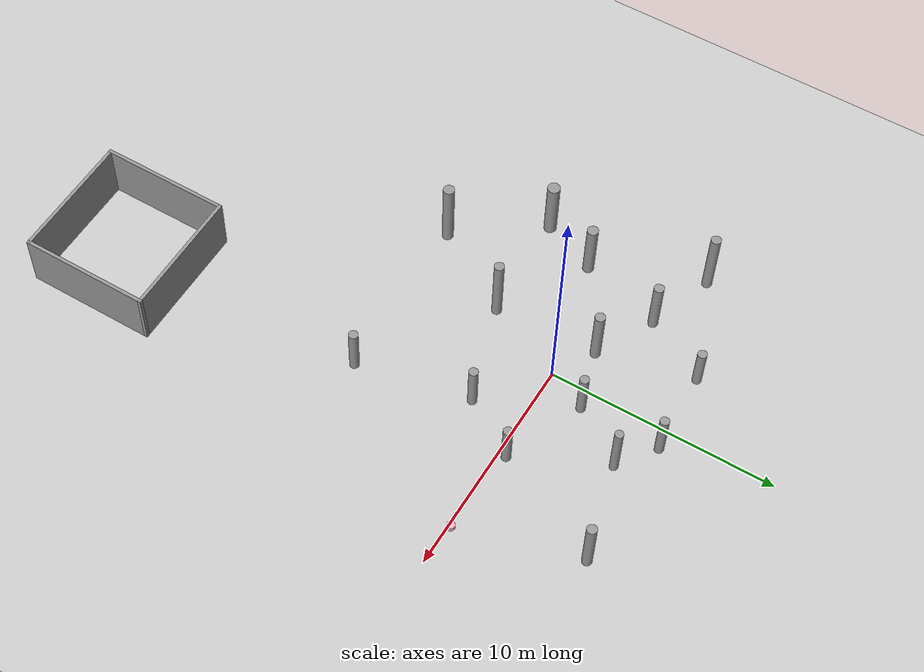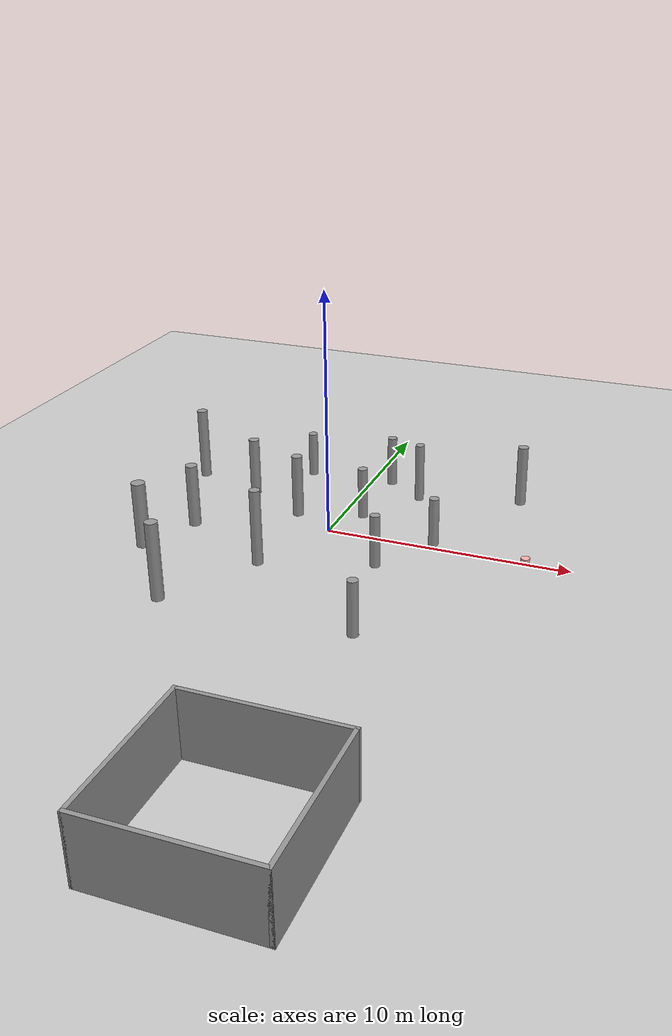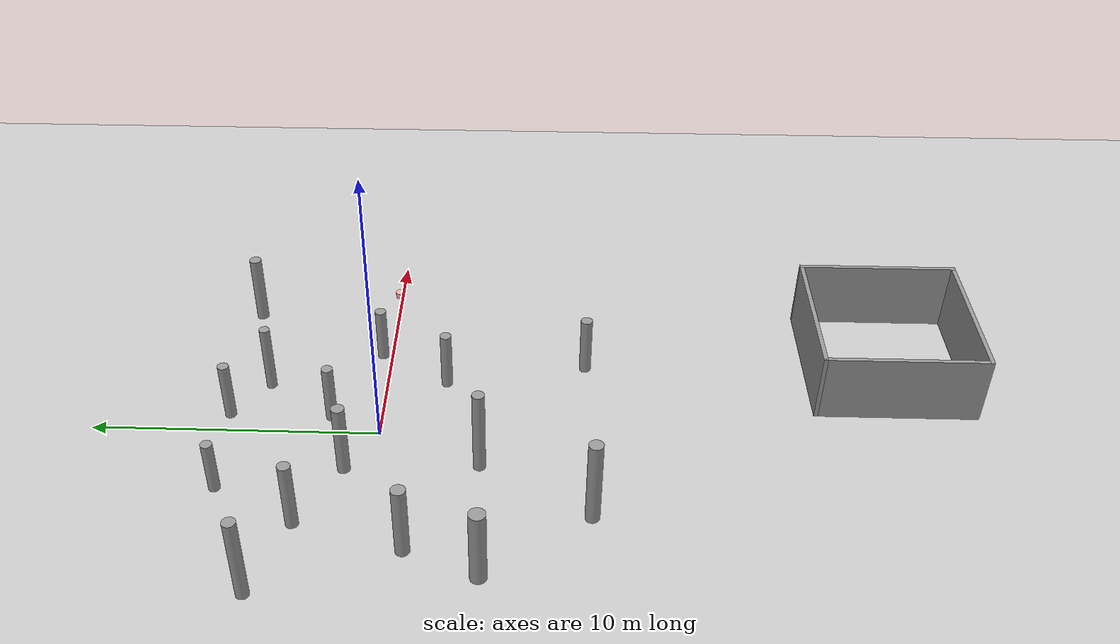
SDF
<sdf version="1.6">
 <world name="default">
  <light name="sun" type="directional">
   <pose>0 0 10 0 -0 0</pose>
   <diffuse>0.8 0.8 0.8 1</diffuse>
   <specular>0.2 0.2 0.2 1</specular>
   <attenuation>
    <range>1000</range>
    <constant>0.9</constant>
    <linear>0.01</linear>
    <quadratic>0.001</quadratic>
   </attenuation>
   <direction>-0.5 0.1 -0.9</direction>
  </light>
  <model name="ground_plane">
   <static>1</static>
   <link name="link">
    <collision name="collision">
     <geometry><plane><normal>0 0 1</normal><size>100 100</size></plane></geometry>
     <surface><friction><ode><mu>100</mu><mu2>50</mu2></ode></friction></surface>
    </collision>
    <visual name="visual">
     <cast_shadows>0</cast_shadows>
     <geometry><plane><normal>0 0 1</normal><size>100 100</size></plane></geometry>
     <material>
      <script><uri>file://media/materials/scripts/gazebo.material</uri><name>Gazebo/Grey</name></script>
     </material>
    </visual>
    <velocity_decay><linear>0</linear><angular>0</angular></velocity_decay>
   </link>
  </model>
  <physics name="default_physics" default="0" type="ode">
   <max_step_size>0.001</max_step_size>
   <real_time_factor>1</real_time_factor>
   <real_time_update_rate>1000</real_time_update_rate>
  </physics>
  <scene><ambient>0.4 0.4 0.4 1</ambient><background>0.7 0.7 0.7 1</background><shadows>1</shadows></scene>
  <spherical_coordinates>
   <surface_model>EARTH_WGS84</surface_model>
   <latitude_deg>0</latitude_deg>
   <longitude_deg>0</longitude_deg>
   <elevation>0</elevation>
   <heading_deg>0</heading_deg>
  </spherical_coordinates>
  <model name="vRoom">
   <pose>4.29627 -17.9422 0 0 -0 0</pose>
   <link name="Wall_0">
    <collision name="Wall_0_Collision">
     <geometry><box><size>5.75 0.15 2.5</size></box></geometry>
     <pose>0 0 1.25 0 -0 0</pose>
    </collision>
    <visual name="Wall_0_Visual">
     <pose>0 0 1.25 0 -0 0</pose>
     <geometry><box><size>5.75 0.15 2.5</size></box></geometry>
     <material>
      <script><uri>file://media/materials/scripts/gazebo.material</uri><name>Gazebo/Grey</name></script>
      <ambient>1 1 1 1</ambient>
     </material>
    </visual>
    <pose>-2.8 -0 0 0 0 -1.5708</pose>
    <velocity_decay><linear>0</linear><angular>0</angular></velocity_decay>
   </link>
   <link name="Wall_1">
    <collision name="Wall_1_Collision">
     <geometry><box><size>5.75 0.15 2.5</size></box></geometry>
     <pose>0 0 1.25 0 -0 0</pose>
    </collision>
    <visual name="Wall_1_Visual">
     <pose>0 0 1.25 0 -0 0</pose>
     <geometry><box><size>5.75 0.15 2.5</size></box></geometry>
     <material>
      <script><uri>file://media/materials/scripts/gazebo.material</uri><name>Gazebo/Grey</name></script>
      <ambient>1 1 1 1</ambient>
     </material>
    </visual>
    <pose>0 -2.8 0 0 -0 0</pose>
    <velocity_decay><linear>0</linear><angular>0</angular></velocity_decay>
   </link>
   <link name="Wall_2">
    <collision name="Wall_2_Collision">
     <geometry><box><size>5.75 0.15 2.5</size></box></geometry>
     <pose>0 0 1.25 0 -0 0</pose>
    </collision>
    <visual name="Wall_2_Visual">
     <pose>0 0 1.25 0 -0 0</pose>
     <geometry><box><size>5.75 0.15 2.5</size></box></geometry>
     <material>
      <script><uri>file://media/materials/scripts/gazebo.material</uri><name>Gazebo/Grey</name></script>
      <ambient>1 1 1 1</ambient>
     </material>
    </visual>
    <pose>2.8 -0 0 0 -0 1.5708</pose>
    <velocity_decay><linear>0</linear><angular>0</angular></velocity_decay>
   </link>
   <link name="Wall_3">
    <collision name="Wall_3_Collision">
     <geometry><box><size>5.75 0.15 2.5</size></box></geometry>
     <pose>0 0 1.25 0 -0 0</pose>
    </collision>
    <visual name="Wall_3_Visual">
     <pose>0 0 1.25 0 -0 0</pose>
     <geometry><box><size>5.75 0.15 2.5</size></box></geometry>
     <material>
      <script><uri>file://media/materials/scripts/gazebo.material</uri><name>Gazebo/Grey</name></script>
      <ambient>1 1 1 1</ambient>
     </material>
    </visual>
    <pose>0 2.8 0 0 -0 3.14159</pose>
    <velocity_decay><linear>0</linear><angular>0</angular></velocity_decay>
   </link>
   <static>1</static>
  </model>
  <model name="unit_cylinder_1">
   <pose>0.822237 1.78651 1.08362 0 -0 3e-06</pose>
   <link name="link">
    <inertial>
     <mass>1</mass>
     <inertia><ixx>1</ixx><ixy>0</ixy><ixz>0</ixz><iyy>1</iyy><iyz>0</iyz><izz>1</izz></inertia>
    </inertial>
    <collision name="collision">
     <geometry><cylinder><radius>0.2</radius><length>2.16725</length></cylinder></geometry>
    </collision>
    <visual name="visual">
     <geometry><cylinder><radius>0.2</radius><length>2.16725</length></cylinder></geometry>
     <material>
      <script><uri>file://media/materials/scripts/gazebo.material</uri><name>Gazebo/Grey</name></script>
     </material>
    </visual>
    <velocity_decay><linear>0</linear><angular>0</angular></velocity_decay>
   </link>
   <static>0</static>
  </model>
  <model name="unit_cylinder_2">
   <pose>2.79752 -2.11358 1.08527 0 -0 2.1e-05</pose>
   <link name="link">
    <inertial>
     <mass>1</mass>
     <inertia><ixx>1</ixx><ixy>0</ixy><ixz>0</ixz><iyy>1</iyy><iyz>0</iyz><izz>1</izz></inertia>
    </inertial>
    <collision name="collision">
     <geometry><cylinder><radius>0.2</radius><length>2.17055</length></cylinder></geometry>
    </collision>
    <visual name="visual">
     <geometry><cylinder><radius>0.2</radius><length>2.17055</length></cylinder></geometry>
     <material>
      <script><uri>file://media/materials/scripts/gazebo.material</uri><name>Gazebo/Grey</name></script>
     </material>
    </visual>
    <velocity_decay><linear>0</linear><angular>0</angular></velocity_decay>
   </link>
   <static>0</static>
  </model>
  <model name="unit_cylinder_3">
   <pose>4.36125 0.36754 1.01442 0 -0 2e-06</pose>
   <link name="link">
    <inertial>
     <mass>1</mass>
     <inertia><ixx>1</ixx><ixy>0</ixy><ixz>0</ixz><iyy>1</iyy><iyz>0</iyz><izz>1</izz></inertia>
    </inertial>
    <collision name="collision">
     <geometry><cylinder><radius>0.2</radius><length>2.02885</length></cylinder></geometry>
    </collision>
    <visual name="visual">
     <geometry><cylinder><radius>0.2</radius><length>2.02885</length></cylinder></geometry>
     <material>
      <script><uri>file://media/materials/scripts/gazebo.material</uri><name>Gazebo/Grey</name></script>
     </material>
    </visual>
    <velocity_decay><linear>0</linear><angular>0</angular></velocity_decay>
   </link>
   <static>0</static>
  </model>
  <gravity>0 0 -9.8</gravity>
  <magnetic_field>6e-06 2.3e-05 -4.2e-05</magnetic_field>
  <atmosphere type="adiabatic"/>
  <model name="unit_cylinder_0">
   <pose>2.5062 4.19494 1.25792 0 -0 0.000393</pose>
   <link name="link">
    <inertial>
     <mass>1</mass>
     <inertia><ixx>0.145833</ixx><ixy>0</ixy><ixz>0</ixz><iyy>0.145833</iyy><iyz>0</iyz><izz>0.125</izz></inertia>
    </inertial>
    <collision name="collision">
     <geometry><cylinder><radius>0.18432</radius><length>2.51583</length></cylinder></geometry>
    </collision>
    <visual name="visual">
     <geometry><cylinder><radius>0.18432</radius><length>2.51583</length></cylinder></geometry>
     <material>
      <script><name>Gazebo/Grey</name><uri>file://media/materials/scripts/gazebo.material</uri></script>
     </material>
    </visual>
   </link>
  </model>
  <model name="unit_cylinder_4">
   <pose>-2.82457 5.13833 0.963841 0 0 -0.000467</pose>
   <link name="link">
    <inertial>
     <mass>1</mass>
     <inertia><ixx>0.145833</ixx><ixy>0</ixy><ixz>0</ixz><iyy>0.145833</iyy><iyz>0</iyz><izz>0.125</izz></inertia>
    </inertial>
    <collision name="collision">
     <geometry><cylinder><radius>0.198442</radius><length>1.92769</length></cylinder></geometry>
    </collision>
    <visual name="visual">
     <geometry><cylinder><radius>0.198442</radius><length>1.92769</length></cylinder></geometry>
     <material>
      <script><name>Gazebo/Grey</name><uri>file://media/materials/scripts/gazebo.material</uri></script>
     </material>
    </visual>
   </link>
  </model>
  <model name="unit_cylinder_5">
   <pose>-1.79197 1.01626 1.32544 0 0 -0.00101</pose>
   <link name="link">
    <inertial>
     <mass>1</mass>
     <inertia><ixx>0.145833</ixx><ixy>0</ixy><ixz>0</ixz><iyy>0.145833</iyy><iyz>0</iyz><izz>0.125</izz></inertia>
    </inertial>
    <collision name="collision">
     <geometry><cylinder><radius>0.22217</radius><length>2.6509</length></cylinder></geometry>
    </collision>
    <visual name="visual">
     <geometry><cylinder><radius>0.22217</radius><length>2.6509</length></cylinder></geometry>
     <material>
      <script><name>Gazebo/Grey</name><uri>file://media/materials/scripts/gazebo.material</uri></script>
     </material>
    </visual>
   </link>
  </model>
  <model name="unit_cylinder_6">
   <pose>0.862234 5.34608 1.08152 0 0 -0.000722</pose>
   <link name="link">
    <inertial>
     <mass>1</mass>
     <inertia><ixx>0.145833</ixx><ixy>0</ixy><ixz>0</ixz><iyy>0.145833</iyy><iyz>0</iyz><izz>0.125</izz></inertia>
    </inertial>
    <collision name="collision">
     <geometry><cylinder><radius>0.197854</radius><length>2.16304</length></cylinder></geometry>
    </collision>
    <visual name="visual">
     <geometry><cylinder><radius>0.197854</radius><length>2.16304</length></cylinder></geometry>
     <material>
      <script><name>Gazebo/Grey</name><uri>file://media/materials/scripts/gazebo.material</uri></script>
     </material>
    </visual>
   </link>
  </model>
  <model name="unit_cylinder_7">
   <pose>-7.33241 3.31704 1.53384 0 -0 0.001271</pose>
   <link name="link">
    <inertial>
     <mass>1</mass>
     <inertia><ixx>0.145833</ixx><ixy>0</ixy><ixz>0</ixz><iyy>0.145833</iyy><iyz>0</iyz><izz>0.125</izz></inertia>
    </inertial>
    <collision name="collision">
     <geometry><cylinder><radius>0.217366</radius><length>3.06769</length></cylinder></geometry>
    </collision>
    <visual name="visual">
     <geometry><cylinder><radius>0.217366</radius><length>3.06769</length></cylinder></geometry>
     <material>
      <script><name>Gazebo/Grey</name><uri>file://media/materials/scripts/gazebo.material</uri></script>
     </material>
    </visual>
   </link>
  </model>
  <model name="unit_cylinder_8">
   <pose>-1.53441 -3.50172 1.5634 0 0 -0.001942</pose>
   <link name="link">
    <inertial>
     <mass>1</mass>
     <inertia><ixx>0.145833</ixx><ixy>0</ixy><ixz>0</ixz><iyy>0.145833</iyy><iyz>0</iyz><izz>0.125</izz></inertia>
    </inertial>
    <collision name="collision">
     <geometry><cylinder><radius>0.212354</radius><length>3.12679</length></cylinder></geometry>
    </collision>
    <visual name="visual">
     <geometry><cylinder><radius>0.212354</radius><length>3.12679</length></cylinder></geometry>
     <material>
      <script><name>Gazebo/Grey</name><uri>file://media/materials/scripts/gazebo.material</uri></script>
     </material>
    </visual>
   </link>
  </model>
  <model name="unit_cylinder_9">
   <pose>-6.44878 -3.7196 1.36656 0 -0 0.000321</pose>
   <link name="link">
    <inertial>
     <mass>1</mass>
     <inertia><ixx>0.145833</ixx><ixy>0</ixy><ixz>0</ixz><iyy>0.145833</iyy><iyz>0</iyz><izz>0.125</izz></inertia>
    </inertial>
    <collision name="collision">
     <geometry><cylinder><radius>0.2754</radius><length>2.73315</length></cylinder></geometry>
    </collision>
    <visual name="visual">
     <geometry><cylinder><radius>0.2754</radius><length>2.73315</length></cylinder></geometry>
     <material>
      <script><name>Gazebo/Grey</name><uri>file://media/materials/scripts/gazebo.material</uri></script>
     </material>
    </visual>
   </link>
  </model>
  <model name="unit_cylinder_10">
   <pose>-5.42725 -1.30541 1.31821 0 -0 5.8e-05</pose>
   <link name="link">
    <inertial>
     <mass>1</mass>
     <inertia><ixx>0.145833</ixx><ixy>0</ixy><ixz>0</ixz><iyy>0.145833</iyy><iyz>0</iyz><izz>0.125</izz></inertia>
    </inertial>
    <collision name="collision">
     <geometry><cylinder><radius>0.241988</radius><length>2.63642</length></cylinder></geometry>
    </collision>
    <visual name="visual">
     <geometry><cylinder><radius>0.241988</radius><length>2.63642</length></cylinder></geometry>
     <material>
      <script><name>Gazebo/Grey</name><uri>file://media/materials/scripts/gazebo.material</uri></script>
     </material>
    </visual>
   </link>
  </model>
  <model name="unit_cylinder_11">
   <pose>6.69947 5.2941 1.298 0 -0 0.001945</pose>
   <link name="link">
    <inertial>
     <mass>1</mass>
     <inertia><ixx>0.145833</ixx><ixy>0</ixy><ixz>0</ixz><iyy>0.145833</iyy><iyz>0</iyz><izz>0.125</izz></inertia>
    </inertial>
    <collision name="collision">
     <geometry><cylinder><radius>0.216132</radius><length>2.596</length></cylinder></geometry>
    </collision>
    <visual name="visual">
     <geometry><cylinder><radius>0.216132</radius><length>2.596</length></cylinder></geometry>
     <material>
      <script><name>Gazebo/Grey</name><uri>file://media/materials/scripts/gazebo.material</uri></script>
     </material>
    </visual>
   </link>
  </model>
  <model name="unit_cylinder_12">
   <pose>3.81376 -7.08861 1.09633 0 0 -0.000418</pose>
   <link name="link">
    <inertial>
     <mass>1</mass>
     <inertia><ixx>0.145833</ixx><ixy>0</ixy><ixz>0</ixz><iyy>0.145833</iyy><iyz>0</iyz><izz>0.125</izz></inertia>
    </inertial>
    <collision name="collision">
     <geometry><cylinder><radius>0.207593</radius><length>2.19266</length></cylinder></geometry>
    </collision>
    <visual name="visual">
     <geometry><cylinder><radius>0.207593</radius><length>2.19266</length></cylinder></geometry>
     <material>
      <script><name>Gazebo/Grey</name><uri>file://media/materials/scripts/gazebo.material</uri></script>
     </material>
    </visual>
   </link>
  </model>
  <model name="unit_cylinder_13">
   <pose>-4.36882 2.32428 1.25374 0 0 -0.001407</pose>
   <link name="link">
    <inertial>
     <mass>1</mass>
     <inertia><ixx>0.145833</ixx><ixy>0</ixy><ixz>0</ixz><iyy>0.145833</iyy><iyz>0</iyz><izz>0.125</izz></inertia>
    </inertial>
    <collision name="collision">
     <geometry><cylinder><radius>0.21681</radius><length>2.5075</length></cylinder></geometry>
    </collision>
    <visual name="visual">
     <geometry><cylinder><radius>0.21681</radius><length>2.5075</length></cylinder></geometry>
     <material>
      <script><name>Gazebo/Grey</name><uri>file://media/materials/scripts/gazebo.material</uri></script>
     </material>
    </visual>
   </link>
  </model>
  <model name="unit_cylinder_14">
   <pose>-3.80208 -7.23432 1.57057 0 -0 0.001382</pose>
   <link name="link">
    <inertial>
     <mass>1</mass>
     <inertia><ixx>0.145833</ixx><ixy>0</ixy><ixz>0</ixz><iyy>0.145833</iyy><iyz>0</iyz><izz>0.125</izz></inertia>
    </inertial>
    <collision name="collision">
     <geometry><cylinder><radius>0.24485</radius><length>3.14116</length></cylinder></geometry>
    </collision>
    <visual name="visual">
     <geometry><cylinder><radius>0.24485</radius><length>3.14116</length></cylinder></geometry>
     <material>
      <script><name>Gazebo/Grey</name><uri>file://media/materials/scripts/gazebo.material</uri></script>
     </material>
    </visual>
   </link>
  </model>
  <model name="unit_cylinder_15">
   <link name="link">
    <inertial>
     <mass>1</mass>
     <inertia><ixx>0.145833</ixx><ixy>0</ixy><ixz>0</ixz><iyy>0.145833</iyy><iyz>0</iyz><izz>0.125</izz></inertia>
    </inertial>
    <visual name="visual">
     <geometry><cylinder><radius>0.175793</radius><length>0.211077</length></cylinder></geometry>
     <material>
      <script><name>Gazebo/Grey</name><uri>file://media/materials/scripts/gazebo.material</uri></script>
      <ambient>1 0.3 0.3 1</ambient>
      <diffuse>1 0.7 0.7 1</diffuse>
      <specular>1 0.01 0.01 1</specular>
      <emissive>1 0 0 1</emissive>
      <shader type="vertex"><normal_map>__default__</normal_map></shader>
     </material>
    </visual>
    <collision name="collision">
     <geometry><cylinder><radius>0.175793</radius><length>0.211077</length></cylinder></geometry>
     <surface>
      <friction>
       <ode><mu>1</mu><mu2>1</mu2><fdir1>0 0 0</fdir1><slip1>0</slip1><slip2>0</slip2></ode>
       <torsional>
        <coefficient>1</coefficient>
        <patch_radius>0</patch_radius>
        <surface_radius>0</surface_radius>
        <use_patch_radius>1</use_patch_radius>
        <ode><slip>0</slip></ode>
       </torsional>
      </friction>
      <bounce><restitution_coefficient>0</restitution_coefficient><threshold>1e+06</threshold></bounce>
      <contact>
       <collide_without_contact>0</collide_without_contact>
       <collide_without_contact_bitmask>1</collide_without_contact_bitmask>
       <collide_bitmask>1</collide_bitmask>
       <ode>
        <soft_cfm>0</soft_cfm>
        <soft_erp>0.2</soft_erp>
        <kp>1e+13</kp>
        <kd>1</kd>
        <max_vel>0.01</max_vel>
        <min_depth>0</min_depth>
       </ode>
       <bullet>
        <split_impulse>1</split_impulse>
        <split_impulse_penetration_threshold>-0.01</split_impulse_penetration_threshold>
        <soft_cfm>0</soft_cfm>
        <soft_erp>0.2</soft_erp>
        <kp>1e+13</kp>
        <kd>1</kd>
       </bullet>
      </contact>
     </surface>
    </collision>
   </link>
   <static>0</static>
   <pose>8.1781 0.118835 0.105539 0 -0 2e-06</pose>
  </model>
 </world>
</sdf>
